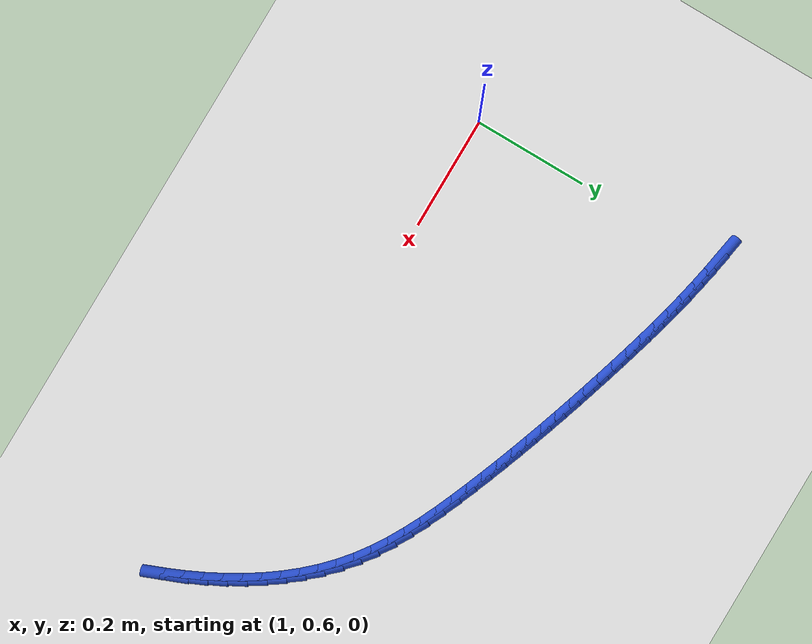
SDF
<sdf version="1.6">
 <world name="default">
  <model name="ground_plane">
   <static>1</static>
   <link name="link">
    <collision name="collision">
     <geometry><plane><normal>0 0 1</normal><size>100 100</size></plane></geometry>
     <surface><friction><ode><mu>100</mu><mu2>50</mu2></ode></friction></surface>
    </collision>
    <visual name="visual">
     <cast_shadows>0</cast_shadows>
     <geometry><plane><normal>0 0 1</normal><size>100 100</size></plane></geometry>
     <material>
      <script><uri>file://media/materials/scripts/gazebo.material</uri><name>Gazebo/WhiteGlow</name></script>
     </material>
    </visual>
   </link>
  </model>
  <model name="line">
   <link name="link_51">
    <pose>0.9899548246608469 1.0585293367408706 0.01 0 1.57 -0.16927994644267996</pose>
    <collision name="collision">
     <geometry><cylinder><radius>0.01</radius><length>0.08</length></cylinder></geometry>
    </collision>
    <visual name="visual">
     <material>
      <script><name>Gazebo/Blue</name><uri>file://media/materials/scripts/gazebo.material</uri></script>
     </material>
     <geometry><cylinder><radius>0.01</radius><length>0.08</length></cylinder></geometry>
    </visual>
   </link>
   <link name="link_52">
    <pose>1.0213144422700509 1.0531694875344833 0.01 0 1.57 -0.1923035712022563</pose>
    <collision name="collision">
     <geometry><cylinder><radius>0.01</radius><length>0.08</length></cylinder></geometry>
    </collision>
    <visual name="visual">
     <material>
      <script><name>Gazebo/Blue</name><uri>file://media/materials/scripts/gazebo.material</uri></script>
     </material>
     <geometry><cylinder><radius>0.01</radius><length>0.08</length></cylinder></geometry>
    </visual>
   </link>
   <link name="link_53">
    <pose>1.0523271668456238 1.0471310100506004 0.01 0 1.57 -0.21339380330619792</pose>
    <collision name="collision">
     <geometry><cylinder><radius>0.01</radius><length>0.08</length></cylinder></geometry>
    </collision>
    <visual name="visual">
     <material>
      <script><name>Gazebo/Blue</name><uri>file://media/materials/scripts/gazebo.material</uri></script>
     </material>
     <geometry><cylinder><radius>0.01</radius><length>0.08</length></cylinder></geometry>
    </visual>
   </link>
   <link name="link_54">
    <pose>1.083035533323215 1.040476721712764 0.01 0 1.57 -0.23244057360587123</pose>
    <collision name="collision">
     <geometry><cylinder><radius>0.01</radius><length>0.08</length></cylinder></geometry>
    </collision>
    <visual name="visual">
     <material>
      <script><name>Gazebo/Blue</name><uri>file://media/materials/scripts/gazebo.material</uri></script>
     </material>
     <geometry><cylinder><radius>0.01</radius><length>0.08</length></cylinder></geometry>
    </visual>
   </link>
   <link name="link_55">
    <pose>1.1134820766384745 1.033269439944516 0.01 0 1.57 -0.24935303393420907</pose>
    <collision name="collision">
     <geometry><cylinder><radius>0.01</radius><length>0.08</length></cylinder></geometry>
    </collision>
    <visual name="visual">
     <material>
      <script><name>Gazebo/Blue</name><uri>file://media/materials/scripts/gazebo.material</uri></script>
     </material>
     <geometry><cylinder><radius>0.01</radius><length>0.08</length></cylinder></geometry>
    </visual>
   </link>
   <link name="link_56">
    <pose>1.1437093317270541 1.0255719821693987 0.01 0 1.57 -0.26405859052661673</pose>
    <collision name="collision">
     <geometry><cylinder><radius>0.01</radius><length>0.08</length></cylinder></geometry>
    </collision>
    <visual name="visual">
     <material>
      <script><name>Gazebo/Blue</name><uri>file://media/materials/scripts/gazebo.material</uri></script>
     </material>
     <geometry><cylinder><radius>0.01</radius><length>0.08</length></cylinder></geometry>
    </visual>
   </link>
   <link name="link_57">
    <pose>1.1737598335246027 1.0174471658109545 0.01 0 1.57 -0.276501615960312</pose>
    <collision name="collision">
     <geometry><cylinder><radius>0.01</radius><length>0.08</length></cylinder></geometry>
    </collision>
    <visual name="visual">
     <material>
      <script><name>Gazebo/Blue</name><uri>file://media/materials/scripts/gazebo.material</uri></script>
     </material>
     <geometry><cylinder><radius>0.01</radius><length>0.08</length></cylinder></geometry>
    </visual>
   </link>
   <link name="link_58">
    <pose>1.2036761169667716 1.0089578082927264 0.01 0 1.57 -0.2866419984555087</pose>
    <collision name="collision">
     <geometry><cylinder><radius>0.01</radius><length>0.08</length></cylinder></geometry>
    </collision>
    <visual name="visual">
     <material>
      <script><name>Gazebo/Blue</name><uri>file://media/materials/scripts/gazebo.material</uri></script>
     </material>
     <geometry><cylinder><radius>0.01</radius><length>0.08</length></cylinder></geometry>
    </visual>
   </link>
   <link name="link_59">
    <pose>1.2335007169892103 1.0001667270382562 0.01 0 1.57 -0.29448605851409426</pose>
    <collision name="collision">
     <geometry><cylinder><radius>0.01</radius><length>0.08</length></cylinder></geometry>
    </collision>
    <visual name="visual">
     <material>
      <script><name>Gazebo/Blue</name><uri>file://media/materials/scripts/gazebo.material</uri></script>
     </material>
     <geometry><cylinder><radius>0.01</radius><length>0.08</length></cylinder></geometry>
    </visual>
   </link>
   <link name="link_60">
    <pose>1.2632756770650722 0.9911358354121959 0.01 0 1.57 -0.3012501766972722</pose>
    <collision name="collision">
     <geometry><cylinder><radius>0.01</radius><length>0.08</length></cylinder></geometry>
    </collision>
    <visual name="visual">
     <material>
      <script><name>Gazebo/Blue</name><uri>file://media/materials/scripts/gazebo.material</uri></script>
     </material>
     <geometry><cylinder><radius>0.01</radius><length>0.08</length></cylinder></geometry>
    </visual>
   </link>
   <link name="link_61">
    <pose>1.2930243788608966 0.9818927178685601 0.01 0 1.57 -0.30850913029278665</pose>
    <collision name="collision">
     <geometry><cylinder><radius>0.01</radius><length>0.08</length></cylinder></geometry>
    </collision>
    <visual name="visual">
     <material>
      <script><name>Gazebo/Blue</name><uri>file://media/materials/scripts/gazebo.material</uri></script>
     </material>
     <geometry><cylinder><radius>0.01</radius><length>0.08</length></cylinder></geometry>
    </visual>
   </link>
   <link name="link_62">
    <pose>1.322746215360632 0.9724208310146791 0.01 0 1.57 -0.31636105314010665</pose>
    <collision name="collision">
     <geometry><cylinder><radius>0.01</radius><length>0.08</length></cylinder></geometry>
    </collision>
    <visual name="visual">
     <material>
      <script><name>Gazebo/Blue</name><uri>file://media/materials/scripts/gazebo.material</uri></script>
     </material>
     <geometry><cylinder><radius>0.01</radius><length>0.08</length></cylinder></geometry>
    </visual>
   </link>
   <link name="link_63">
    <pose>1.3524390016083863 0.9627007287937996 0.01 0 1.57 -0.3247992721002125</pose>
    <collision name="collision">
     <geometry><cylinder><radius>0.01</radius><length>0.08</length></cylinder></geometry>
    </collision>
    <visual name="visual">
     <material>
      <script><name>Gazebo/Blue</name><uri>file://media/materials/scripts/gazebo.material</uri></script>
     </material>
     <geometry><cylinder><radius>0.01</radius><length>0.08</length></cylinder></geometry>
    </visual>
   </link>
   <link name="link_64">
    <pose>1.382100552648266 0.9527129651491686 0.01 0 1.57 -0.33381623935468535</pose>
    <collision name="collision">
     <geometry><cylinder><radius>0.01</radius><length>0.08</length></cylinder></geometry>
    </collision>
    <visual name="visual">
     <material>
      <script><name>Gazebo/Blue</name><uri>file://media/materials/scripts/gazebo.material</uri></script>
     </material>
     <geometry><cylinder><radius>0.01</radius><length>0.08</length></cylinder></geometry>
    </visual>
   </link>
   <link name="link_65">
    <pose>1.411728683524379 0.9424380940240334 0.01 0 1.57 -0.34340346854569054</pose>
    <collision name="collision">
     <geometry><cylinder><radius>0.01</radius><length>0.08</length></cylinder></geometry>
    </collision>
    <visual name="visual">
     <material>
      <script><name>Gazebo/Blue</name><uri>file://media/materials/scripts/gazebo.material</uri></script>
     </material>
     <geometry><cylinder><radius>0.01</radius><length>0.08</length></cylinder></geometry>
    </visual>
   </link>
   <link name="link_66">
    <pose>1.441321209280834 0.931856669361641 0.01 0 1.57 -0.3535514719870915</pose>
    <collision name="collision">
     <geometry><cylinder><radius>0.01</radius><length>0.08</length></cylinder></geometry>
    </collision>
    <visual name="visual">
     <material>
      <script><name>Gazebo/Blue</name><uri>file://media/materials/scripts/gazebo.material</uri></script>
     </material>
     <geometry><cylinder><radius>0.01</radius><length>0.08</length></cylinder></geometry>
    </visual>
   </link>
   <link name="link_67">
    <pose>1.4708759449617368 0.920949245105238 0.01 0 1.57 -0.3642497002878182</pose>
    <collision name="collision">
     <geometry><cylinder><radius>0.01</radius><length>0.08</length></cylinder></geometry>
    </collision>
    <visual name="visual">
     <material>
      <script><name>Gazebo/Blue</name><uri>file://media/materials/scripts/gazebo.material</uri></script>
     </material>
     <geometry><cylinder><radius>0.01</radius><length>0.08</length></cylinder></geometry>
    </visual>
   </link>
   <link name="link_68">
    <pose>1.5003907056111956 0.9096963751980718 0.01 0 1.57 -0.3754864858232488</pose>
    <collision name="collision">
     <geometry><cylinder><radius>0.01</radius><length>0.08</length></cylinder></geometry>
    </collision>
    <visual name="visual">
     <material>
      <script><name>Gazebo/Blue</name><uri>file://media/materials/scripts/gazebo.material</uri></script>
     </material>
     <geometry><cylinder><radius>0.01</radius><length>0.08</length></cylinder></geometry>
    </visual>
   </link>
   <link name="link_69">
    <pose>1.5298633062733182 0.8980786135833891 0.01 0 1.57 -0.3882064209361617</pose>
    <collision name="collision">
     <geometry><cylinder><radius>0.01</radius><length>0.08</length></cylinder></geometry>
    </collision>
    <visual name="visual">
     <material>
      <script><name>Gazebo/Blue</name><uri>file://media/materials/scripts/gazebo.material</uri></script>
     </material>
     <geometry><cylinder><radius>0.01</radius><length>0.08</length></cylinder></geometry>
    </visual>
   </link>
   <link name="link_70">
    <pose>1.55926610156848 0.8860540515846597 0.01 0 1.57 -0.40705466047487626</pose>
    <collision name="collision">
     <geometry><cylinder><radius>0.01</radius><length>0.08</length></cylinder></geometry>
    </collision>
    <visual name="visual">
     <material>
      <script><name>Gazebo/Blue</name><uri>file://media/materials/scripts/gazebo.material</uri></script>
     </material>
     <geometry><cylinder><radius>0.01</radius><length>0.08</length></cylinder></geometry>
    </visual>
   </link>
   <link name="link_71">
    <pose>1.5884486663612982 0.8734724573097219 0.01 0 1.57 -0.43357389648596206</pose>
    <collision name="collision">
     <geometry><cylinder><radius>0.01</radius><length>0.08</length></cylinder></geometry>
    </collision>
    <visual name="visual">
     <material>
      <script><name>Gazebo/Blue</name><uri>file://media/materials/scripts/gazebo.material</uri></script>
     </material>
     <geometry><cylinder><radius>0.01</radius><length>0.08</length></cylinder></geometry>
    </visual>
   </link>
   <link name="link_72">
    <pose>1.617223612572961 0.8601509880759243 0.01 0 1.57 -0.4680163771352982</pose>
    <collision name="collision">
     <geometry><cylinder><radius>0.01</radius><length>0.08</length></cylinder></geometry>
    </collision>
    <visual name="visual">
     <material>
      <script><name>Gazebo/Blue</name><uri>file://media/materials/scripts/gazebo.material</uri></script>
     </material>
     <geometry><cylinder><radius>0.01</radius><length>0.08</length></cylinder></geometry>
    </visual>
   </link>
   <link name="link_73">
    <pose>1.6454035447017041 0.8459067946516672 0.01 0 1.57 -0.5106870867776923</pose>
    <collision name="collision">
     <geometry><cylinder><radius>0.01</radius><length>0.08</length></cylinder></geometry>
    </collision>
    <visual name="visual">
     <material>
      <script><name>Gazebo/Blue</name><uri>file://media/materials/scripts/gazebo.material</uri></script>
     </material>
     <geometry><cylinder><radius>0.01</radius><length>0.08</length></cylinder></geometry>
    </visual>
   </link>
   <link name="link_74">
    <pose>1.67280106724576 0.8305570278053512 0.01 0 1.57 -0.5618813370693775</pose>
    <collision name="collision">
     <geometry><cylinder><radius>0.01</radius><length>0.08</length></cylinder></geometry>
    </collision>
    <visual name="visual">
     <material>
      <script><name>Gazebo/Blue</name><uri>file://media/materials/scripts/gazebo.material</uri></script>
     </material>
     <geometry><cylinder><radius>0.01</radius><length>0.08</length></cylinder></geometry>
    </visual>
   </link>
   <link name="link_75">
    <pose>1.6992287847033645 0.8139188383053765 0.01 0 1.57 -0.6217961640757254</pose>
    <collision name="collision">
     <geometry><cylinder><radius>0.01</radius><length>0.08</length></cylinder></geometry>
    </collision>
    <visual name="visual">
     <material>
      <script><name>Gazebo/Blue</name><uri>file://media/materials/scripts/gazebo.material</uri></script>
     </material>
     <geometry><cylinder><radius>0.01</radius><length>0.08</length></cylinder></geometry>
    </visual>
   </link>
   <link name="link_76">
    <pose>1.7244993015727503 0.7958093769201431 0.01 0 1.57 -0.689901114932038</pose>
    <collision name="collision">
     <geometry><cylinder><radius>0.01</radius><length>0.08</length></cylinder></geometry>
    </collision>
    <visual name="visual">
     <material>
      <script><name>Gazebo/Blue</name><uri>file://media/materials/scripts/gazebo.material</uri></script>
     </material>
     <geometry><cylinder><radius>0.01</radius><length>0.08</length></cylinder></geometry>
    </visual>
   </link>
   <link name="link_77">
    <pose>1.7484345565803976 0.7760587255309868 0.01 0 1.57 -0.7589189441751257</pose>
    <collision name="collision">
     <geometry><cylinder><radius>0.01</radius><length>0.08</length></cylinder></geometry>
    </collision>
    <visual name="visual">
     <material>
      <script><name>Gazebo/Blue</name><uri>file://media/materials/scripts/gazebo.material</uri></script>
     </material>
     <geometry><cylinder><radius>0.01</radius><length>0.08</length></cylinder></geometry>
    </visual>
   </link>
   <link name="link_78">
    <pose>1.7709837050751531 0.7546732047470565 0.01 0 1.57 -0.8235414793544874</pose>
    <collision name="collision">
     <geometry><cylinder><radius>0.01</radius><length>0.08</length></cylinder></geometry>
    </collision>
    <visual name="visual">
     <material>
      <script><name>Gazebo/Blue</name><uri>file://media/materials/scripts/gazebo.material</uri></script>
     </material>
     <geometry><cylinder><radius>0.01</radius><length>0.08</length></cylinder></geometry>
    </visual>
   </link>
   <link name="link_79">
    <pose>1.792187832656284 0.731786490157381 0.01 0 1.57 -0.8835822279837892</pose>
    <collision name="collision">
     <geometry><cylinder><radius>0.01</radius><length>0.08</length></cylinder></geometry>
    </collision>
    <visual name="visual">
     <material>
      <script><name>Gazebo/Blue</name><uri>file://media/materials/scripts/gazebo.material</uri></script>
     </material>
     <geometry><cylinder><radius>0.01</radius><length>0.08</length></cylinder></geometry>
    </visual>
   </link>
   <link name="link_80">
    <pose>1.8120900675731506 0.7075350871231285 0.01 0 1.57 -0.939108992367259</pose>
    <collision name="collision">
     <geometry><cylinder><radius>0.01</radius><length>0.08</length></cylinder></geometry>
    </collision>
    <visual name="visual">
     <material>
      <script><name>Gazebo/Blue</name><uri>file://media/materials/scripts/gazebo.material</uri></script>
     </material>
     <geometry><cylinder><radius>0.01</radius><length>0.08</length></cylinder></geometry>
    </visual>
   </link>
   <link name="link_81">
    <pose>1.8307335380751135 0.6820555010054672 0.01 0 1.57 -0.9902914331271295</pose>
    <collision name="collision">
     <geometry><cylinder><radius>0.01</radius><length>0.08</length></cylinder></geometry>
    </collision>
    <visual name="visual">
     <material>
      <script><name>Gazebo/Blue</name><uri>file://media/materials/scripts/gazebo.material</uri></script>
     </material>
     <geometry><cylinder><radius>0.01</radius><length>0.08</length></cylinder></geometry>
    </visual>
   </link>
   <link name="link_82">
    <pose>1.8481613724115327 0.6554842371655649 0.01 0 1.57 -1.0373653895672157</pose>
    <collision name="collision">
     <geometry><cylinder><radius>0.01</radius><length>0.08</length></cylinder></geometry>
    </collision>
    <visual name="visual">
     <material>
      <script><name>Gazebo/Blue</name><uri>file://media/materials/scripts/gazebo.material</uri></script>
     </material>
     <geometry><cylinder><radius>0.01</radius><length>0.08</length></cylinder></geometry>
    </visual>
   </link>
   <link name="link_83">
    <pose>1.8644166988317685 0.62795780096459 0.01 0 1.57 -1.080603959487044</pose>
    <collision name="collision">
     <geometry><cylinder><radius>0.01</radius><length>0.08</length></cylinder></geometry>
    </collision>
    <visual name="visual">
     <material>
      <script><name>Gazebo/Blue</name><uri>file://media/materials/scripts/gazebo.material</uri></script>
     </material>
     <geometry><cylinder><radius>0.01</radius><length>0.08</length></cylinder></geometry>
    </visual>
   </link>
   <link name="link_84">
    <pose>1.8795426455851811 0.5996126977637106 0.01 0 1.57 -1.120295673128278</pose>
    <collision name="collision">
     <geometry><cylinder><radius>0.01</radius><length>0.08</length></cylinder></geometry>
    </collision>
    <visual name="visual">
     <material>
      <script><name>Gazebo/Blue</name><uri>file://media/materials/scripts/gazebo.material</uri></script>
     </material>
     <geometry><cylinder><radius>0.01</radius><length>0.08</length></cylinder></geometry>
    </visual>
   </link>
   <link name="link_85">
    <pose>1.8935823409211312 0.5705854329240941 0.01 0 1.57 -1.1567290243737833</pose>
    <collision name="collision">
     <geometry><cylinder><radius>0.01</radius><length>0.08</length></cylinder></geometry>
    </collision>
    <visual name="visual">
     <material>
      <script><name>Gazebo/Blue</name><uri>file://media/materials/scripts/gazebo.material</uri></script>
     </material>
     <geometry><cylinder><radius>0.01</radius><length>0.08</length></cylinder></geometry>
    </visual>
   </link>
   <link name="link_86">
    <pose>1.9065789130889783 0.5410125118069099 0.01 0 1.57 -1.1901821762524518</pose>
    <collision name="collision">
     <geometry><cylinder><radius>0.01</radius><length>0.08</length></cylinder></geometry>
    </collision>
    <visual name="visual">
     <material>
      <script><name>Gazebo/Blue</name><uri>file://media/materials/scripts/gazebo.material</uri></script>
     </material>
     <geometry><cylinder><radius>0.01</radius><length>0.08</length></cylinder></geometry>
    </visual>
   </link>
  </model>
 </world>
</sdf>
